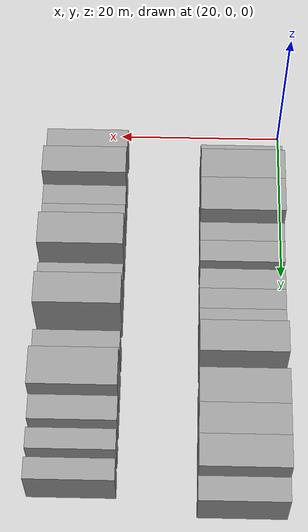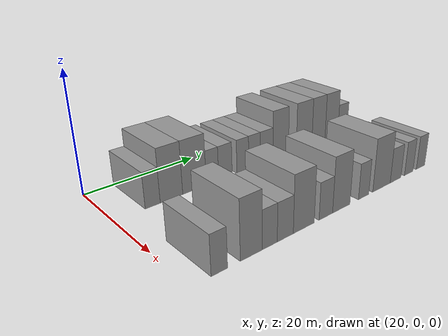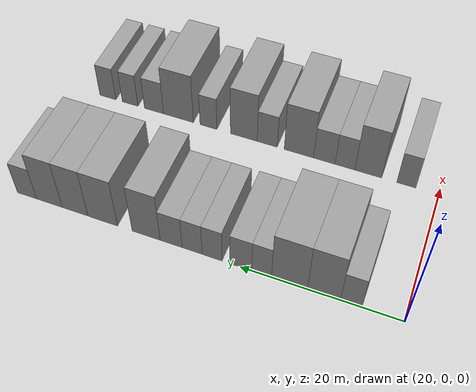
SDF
<sdf version="1.6">
 <world name="default">
  <model name="building_49">
   <static>1</static>
   <pose>25.0000 6.2965 0 0.000000 0.000000 0.000000</pose>
   <link name="link">
    <pose>0 0 3.00 0 0 0</pose>
    <collision name="collision"><geometry><box><size>10.0000 2.5467 6.0000</size></box></geometry></collision>
    <visual name="visual">
     <cast_shadows>0</cast_shadows>
     <geometry><box><size>10.0000 2.5467 6.0000</size></box></geometry>
     <material>
      <script>
       <uri>model://grey_wall/materials/scripts</uri>
       <uri>model://grey_wall/materials/textures</uri>
       <name>vrc/grey_wall</name>
      </script>
     </material>
    </visual>
   </link>
  </model>
  <model name="building_50">
   <static>1</static>
   <pose>25.0000 9.5672 0 0.000000 0.000000 0.000000</pose>
   <link name="link">
    <pose>0 0 4.50 0 0 0</pose>
    <collision name="collision"><geometry><box><size>10.0000 3.9947 9.0000</size></box></geometry></collision>
    <visual name="visual">
     <cast_shadows>0</cast_shadows>
     <geometry><box><size>10.0000 3.9947 9.0000</size></box></geometry>
     <material>
      <script>
       <uri>model://grey_wall/materials/scripts</uri>
       <uri>model://grey_wall/materials/textures</uri>
       <name>vrc/grey_wall</name>
      </script>
     </material>
    </visual>
   </link>
  </model>
  <model name="building_51">
   <static>1</static>
   <pose>25.0000 13.7951 0 0.000000 0.000000 0.000000</pose>
   <link name="link">
    <pose>0 0 4.50 0 0 0</pose>
    <collision name="collision"><geometry><box><size>10.0000 4.4612 9.0000</size></box></geometry></collision>
    <visual name="visual">
     <cast_shadows>0</cast_shadows>
     <geometry><box><size>10.0000 4.4612 9.0000</size></box></geometry>
     <material>
      <script>
       <uri>model://grey_wall/materials/scripts</uri>
       <uri>model://grey_wall/materials/textures</uri>
       <name>vrc/grey_wall</name>
      </script>
     </material>
    </visual>
   </link>
  </model>
  <model name="building_52">
   <static>1</static>
   <pose>25.0000 17.2621 0 0.000000 0.000000 0.000000</pose>
   <link name="link">
    <pose>0 0 3.00 0 0 0</pose>
    <collision name="collision"><geometry><box><size>10.0000 2.4728 6.0000</size></box></geometry></collision>
    <visual name="visual">
     <cast_shadows>0</cast_shadows>
     <geometry><box><size>10.0000 2.4728 6.0000</size></box></geometry>
     <material>
      <script>
       <uri>model://grey_wall/materials/scripts</uri>
       <uri>model://grey_wall/materials/textures</uri>
       <name>vrc/grey_wall</name>
      </script>
     </material>
    </visual>
   </link>
  </model>
  <model name="building_53">
   <static>1</static>
   <pose>25.0000 19.8947 0 0.000000 0.000000 0.000000</pose>
   <link name="link">
    <pose>0 0 3.00 0 0 0</pose>
    <collision name="collision"><geometry><box><size>10.0000 2.7923 6.0000</size></box></geometry></collision>
    <visual name="visual">
     <cast_shadows>0</cast_shadows>
     <geometry><box><size>10.0000 2.7923 6.0000</size></box></geometry>
     <material>
      <script>
       <uri>model://grey_wall/materials/scripts</uri>
       <uri>model://grey_wall/materials/textures</uri>
       <name>vrc/grey_wall</name>
      </script>
     </material>
    </visual>
   </link>
  </model>
  <model name="building_54">
   <static>1</static>
   <pose>25.0000 23.5818 0 0.000000 0.000000 0.000000</pose>
   <link name="link">
    <pose>0 0 3.00 0 0 0</pose>
    <collision name="collision"><geometry><box><size>10.0000 2.5820 6.0000</size></box></geometry></collision>
    <visual name="visual">
     <cast_shadows>0</cast_shadows>
     <geometry><box><size>10.0000 2.5820 6.0000</size></box></geometry>
     <material>
      <script>
       <uri>model://grey_wall/materials/scripts</uri>
       <uri>model://grey_wall/materials/textures</uri>
       <name>vrc/grey_wall</name>
      </script>
     </material>
    </visual>
   </link>
  </model>
  <model name="building_55">
   <static>1</static>
   <pose>25.0000 26.1782 0 0.000000 0.000000 0.000000</pose>
   <link name="link">
    <pose>0 0 3.00 0 0 0</pose>
    <collision name="collision"><geometry><box><size>10.0000 2.6108 6.0000</size></box></geometry></collision>
    <visual name="visual">
     <cast_shadows>0</cast_shadows>
     <geometry><box><size>10.0000 2.6108 6.0000</size></box></geometry>
     <material>
      <script>
       <uri>model://grey_wall/materials/scripts</uri>
       <uri>model://grey_wall/materials/textures</uri>
       <name>vrc/grey_wall</name>
      </script>
     </material>
    </visual>
   </link>
  </model>
  <model name="building_56">
   <static>1</static>
   <pose>25.0000 28.9518 0 0.000000 0.000000 0.000000</pose>
   <link name="link">
    <pose>0 0 3.00 0 0 0</pose>
    <collision name="collision"><geometry><box><size>10.0000 2.9364 6.0000</size></box></geometry></collision>
    <visual name="visual">
     <cast_shadows>0</cast_shadows>
     <geometry><box><size>10.0000 2.9364 6.0000</size></box></geometry>
     <material>
      <script>
       <uri>model://grey_wall/materials/scripts</uri>
       <uri>model://grey_wall/materials/textures</uri>
       <name>vrc/grey_wall</name>
      </script>
     </material>
    </visual>
   </link>
  </model>
  <model name="building_57">
   <static>1</static>
   <pose>25.0000 32.3154 0 0.000000 0.000000 0.000000</pose>
   <link name="link">
    <pose>0 0 4.50 0 0 0</pose>
    <collision name="collision"><geometry><box><size>10.0000 3.7908 9.0000</size></box></geometry></collision>
    <visual name="visual">
     <cast_shadows>0</cast_shadows>
     <geometry><box><size>10.0000 3.7908 9.0000</size></box></geometry>
     <material>
      <script>
       <uri>model://grey_wall/materials/scripts</uri>
       <uri>model://grey_wall/materials/textures</uri>
       <name>vrc/grey_wall</name>
      </script>
     </material>
    </visual>
   </link>
  </model>
  <model name="building_58">
   <static>1</static>
   <pose>25.0000 38.2663 0 0.000000 0.000000 0.000000</pose>
   <link name="link">
    <pose>0 0 4.50 0 0 0</pose>
    <collision name="collision"><geometry><box><size>10.0000 4.1110 9.0000</size></box></geometry></collision>
    <visual name="visual">
     <cast_shadows>0</cast_shadows>
     <geometry><box><size>10.0000 4.1110 9.0000</size></box></geometry>
     <material>
      <script>
       <uri>model://grey_wall/materials/scripts</uri>
       <uri>model://grey_wall/materials/textures</uri>
       <name>vrc/grey_wall</name>
      </script>
     </material>
    </visual>
   </link>
  </model>
  <model name="building_59">
   <static>1</static>
   <pose>25.0000 42.1359 0 0.000000 0.000000 0.000000</pose>
   <link name="link">
    <pose>0 0 4.50 0 0 0</pose>
    <collision name="collision"><geometry><box><size>10.0000 3.6283 9.0000</size></box></geometry></collision>
    <visual name="visual">
     <cast_shadows>0</cast_shadows>
     <geometry><box><size>10.0000 3.6283 9.0000</size></box></geometry>
     <material>
      <script>
       <uri>model://grey_wall/materials/scripts</uri>
       <uri>model://grey_wall/materials/textures</uri>
       <name>vrc/grey_wall</name>
      </script>
     </material>
    </visual>
   </link>
  </model>
  <model name="building_60">
   <static>1</static>
   <pose>25.0000 45.8025 0 0.000000 0.000000 0.000000</pose>
   <link name="link">
    <pose>0 0 4.50 0 0 0</pose>
    <collision name="collision"><geometry><box><size>10.0000 3.7048 9.0000</size></box></geometry></collision>
    <visual name="visual">
     <cast_shadows>0</cast_shadows>
     <geometry><box><size>10.0000 3.7048 9.0000</size></box></geometry>
     <material>
      <script>
       <uri>model://grey_wall/materials/scripts</uri>
       <uri>model://grey_wall/materials/textures</uri>
       <name>vrc/grey_wall</name>
      </script>
     </material>
    </visual>
   </link>
  </model>
  <model name="building_61">
   <static>1</static>
   <pose>25.0000 49.0504 0 0.000000 0.000000 0.000000</pose>
   <link name="link">
    <pose>0 0 3.00 0 0 0</pose>
    <collision name="collision"><geometry><box><size>10.0000 2.7910 6.0000</size></box></geometry></collision>
    <visual name="visual">
     <cast_shadows>0</cast_shadows>
     <geometry><box><size>10.0000 2.7910 6.0000</size></box></geometry>
     <material>
      <script>
       <uri>model://grey_wall/materials/scripts</uri>
       <uri>model://grey_wall/materials/textures</uri>
       <name>vrc/grey_wall</name>
      </script>
     </material>
    </visual>
   </link>
  </model>
  <model name="building_153">
   <static>1</static>
   <pose>44.0000 4.2723 0 0.000000 0.000000 0.000000</pose>
   <link name="link">
    <pose>0 0 3.00 0 0 0</pose>
    <collision name="collision"><geometry><box><size>10.0000 2.5069 6.0000</size></box></geometry></collision>
    <visual name="visual">
     <cast_shadows>0</cast_shadows>
     <geometry><box><size>10.0000 2.5069 6.0000</size></box></geometry>
     <material>
      <script>
       <uri>model://grey_wall/materials/scripts</uri>
       <uri>model://grey_wall/materials/textures</uri>
       <name>vrc/grey_wall</name>
      </script>
     </material>
    </visual>
   </link>
  </model>
  <model name="building_154">
   <static>1</static>
   <pose>44.0000 9.3346 0 0.000000 0.000000 0.000000</pose>
   <link name="link">
    <pose>0 0 4.50 0 0 0</pose>
    <collision name="collision"><geometry><box><size>10.0000 3.6176 9.0000</size></box></geometry></collision>
    <visual name="visual">
     <cast_shadows>0</cast_shadows>
     <geometry><box><size>10.0000 3.6176 9.0000</size></box></geometry>
     <material>
      <script>
       <uri>model://grey_wall/materials/scripts</uri>
       <uri>model://grey_wall/materials/textures</uri>
       <name>vrc/grey_wall</name>
      </script>
     </material>
    </visual>
   </link>
  </model>
  <model name="building_155">
   <static>1</static>
   <pose>44.0000 12.4798 0 0.000000 0.000000 0.000000</pose>
   <link name="link">
    <pose>0 0 3.00 0 0 0</pose>
    <collision name="collision"><geometry><box><size>10.0000 2.6728 6.0000</size></box></geometry></collision>
    <visual name="visual">
     <cast_shadows>0</cast_shadows>
     <geometry><box><size>10.0000 2.6728 6.0000</size></box></geometry>
     <material>
      <script>
       <uri>model://grey_wall/materials/scripts</uri>
       <uri>model://grey_wall/materials/textures</uri>
       <name>vrc/grey_wall</name>
      </script>
     </material>
    </visual>
   </link>
  </model>
  <model name="building_156">
   <static>1</static>
   <pose>44.0000 15.2992 0 0.000000 0.000000 0.000000</pose>
   <link name="link">
    <pose>0 0 3.00 0 0 0</pose>
    <collision name="collision"><geometry><box><size>10.0000 2.9660 6.0000</size></box></geometry></collision>
    <visual name="visual">
     <cast_shadows>0</cast_shadows>
     <geometry><box><size>10.0000 2.9660 6.0000</size></box></geometry>
     <material>
      <script>
       <uri>model://grey_wall/materials/scripts</uri>
       <uri>model://grey_wall/materials/textures</uri>
       <name>vrc/grey_wall</name>
      </script>
     </material>
    </visual>
   </link>
  </model>
  <model name="building_157">
   <static>1</static>
   <pose>44.0000 18.8322 0 0.000000 0.000000 0.000000</pose>
   <link name="link">
    <pose>0 0 4.50 0 0 0</pose>
    <collision name="collision"><geometry><box><size>10.0000 4.0999 9.0000</size></box></geometry></collision>
    <visual name="visual">
     <cast_shadows>0</cast_shadows>
     <geometry><box><size>10.0000 4.0999 9.0000</size></box></geometry>
     <material>
      <script>
       <uri>model://grey_wall/materials/scripts</uri>
       <uri>model://grey_wall/materials/textures</uri>
       <name>vrc/grey_wall</name>
      </script>
     </material>
    </visual>
   </link>
  </model>
  <model name="building_158">
   <static>1</static>
   <pose>44.0000 23.3084 0 0.000000 0.000000 0.000000</pose>
   <link name="link">
    <pose>0 0 3.00 0 0 0</pose>
    <collision name="collision"><geometry><box><size>10.0000 2.8526 6.0000</size></box></geometry></collision>
    <visual name="visual">
     <cast_shadows>0</cast_shadows>
     <geometry><box><size>10.0000 2.8526 6.0000</size></box></geometry>
     <material>
      <script>
       <uri>model://grey_wall/materials/scripts</uri>
       <uri>model://grey_wall/materials/textures</uri>
       <name>vrc/grey_wall</name>
      </script>
     </material>
    </visual>
   </link>
  </model>
  <model name="building_159">
   <static>1</static>
   <pose>44.0000 26.6647 0 0.000000 0.000000 0.000000</pose>
   <link name="link">
    <pose>0 0 4.50 0 0 0</pose>
    <collision name="collision"><geometry><box><size>10.0000 3.8602 9.0000</size></box></geometry></collision>
    <visual name="visual">
     <cast_shadows>0</cast_shadows>
     <geometry><box><size>10.0000 3.8602 9.0000</size></box></geometry>
     <material>
      <script>
       <uri>model://grey_wall/materials/scripts</uri>
       <uri>model://grey_wall/materials/textures</uri>
       <name>vrc/grey_wall</name>
      </script>
     </material>
    </visual>
   </link>
  </model>
  <model name="building_160">
   <static>1</static>
   <pose>44.0000 31.8379 0 0.000000 0.000000 0.000000</pose>
   <link name="link">
    <pose>0 0 3.00 0 0 0</pose>
    <collision name="collision"><geometry><box><size>10.0000 2.4862 6.0000</size></box></geometry></collision>
    <visual name="visual">
     <cast_shadows>0</cast_shadows>
     <geometry><box><size>10.0000 2.4862 6.0000</size></box></geometry>
     <material>
      <script>
       <uri>model://grey_wall/materials/scripts</uri>
       <uri>model://grey_wall/materials/textures</uri>
       <name>vrc/grey_wall</name>
      </script>
     </material>
    </visual>
   </link>
  </model>
  <model name="building_161">
   <static>1</static>
   <pose>44.0000 36.3279 0 0.000000 0.000000 0.000000</pose>
   <link name="link">
    <pose>0 0 4.50 0 0 0</pose>
    <collision name="collision"><geometry><box><size>10.0000 4.4938 9.0000</size></box></geometry></collision>
    <visual name="visual">
     <cast_shadows>0</cast_shadows>
     <geometry><box><size>10.0000 4.4938 9.0000</size></box></geometry>
     <material>
      <script>
       <uri>model://grey_wall/materials/scripts</uri>
       <uri>model://grey_wall/materials/textures</uri>
       <name>vrc/grey_wall</name>
      </script>
     </material>
    </visual>
   </link>
  </model>
  <model name="building_162">
   <static>1</static>
   <pose>44.0000 40.0306 0 0.000000 0.000000 0.000000</pose>
   <link name="link">
    <pose>0 0 3.00 0 0 0</pose>
    <collision name="collision"><geometry><box><size>10.0000 2.9116 6.0000</size></box></geometry></collision>
    <visual name="visual">
     <cast_shadows>0</cast_shadows>
     <geometry><box><size>10.0000 2.9116 6.0000</size></box></geometry>
     <material>
      <script>
       <uri>model://grey_wall/materials/scripts</uri>
       <uri>model://grey_wall/materials/textures</uri>
       <name>vrc/grey_wall</name>
      </script>
     </material>
    </visual>
   </link>
  </model>
  <model name="building_163">
   <static>1</static>
   <pose>44.0000 43.7037 0 0.000000 0.000000 0.000000</pose>
   <link name="link">
    <pose>0 0 3.00 0 0 0</pose>
    <collision name="collision"><geometry><box><size>10.0000 2.4346 6.0000</size></box></geometry></collision>
    <visual name="visual">
     <cast_shadows>0</cast_shadows>
     <geometry><box><size>10.0000 2.4346 6.0000</size></box></geometry>
     <material>
      <script>
       <uri>model://grey_wall/materials/scripts</uri>
       <uri>model://grey_wall/materials/textures</uri>
       <name>vrc/grey_wall</name>
      </script>
     </material>
    </visual>
   </link>
  </model>
  <model name="building_164">
   <static>1</static>
   <pose>44.0000 47.1734 0 0.000000 0.000000 0.000000</pose>
   <link name="link">
    <pose>0 0 3.00 0 0 0</pose>
    <collision name="collision"><geometry><box><size>10.0000 2.5046 6.0000</size></box></geometry></collision>
    <visual name="visual">
     <cast_shadows>0</cast_shadows>
     <geometry><box><size>10.0000 2.5046 6.0000</size></box></geometry>
     <material>
      <script>
       <uri>model://grey_wall/materials/scripts</uri>
       <uri>model://grey_wall/materials/textures</uri>
       <name>vrc/grey_wall</name>
      </script>
     </material>
    </visual>
   </link>
  </model>
 </world>
</sdf>
